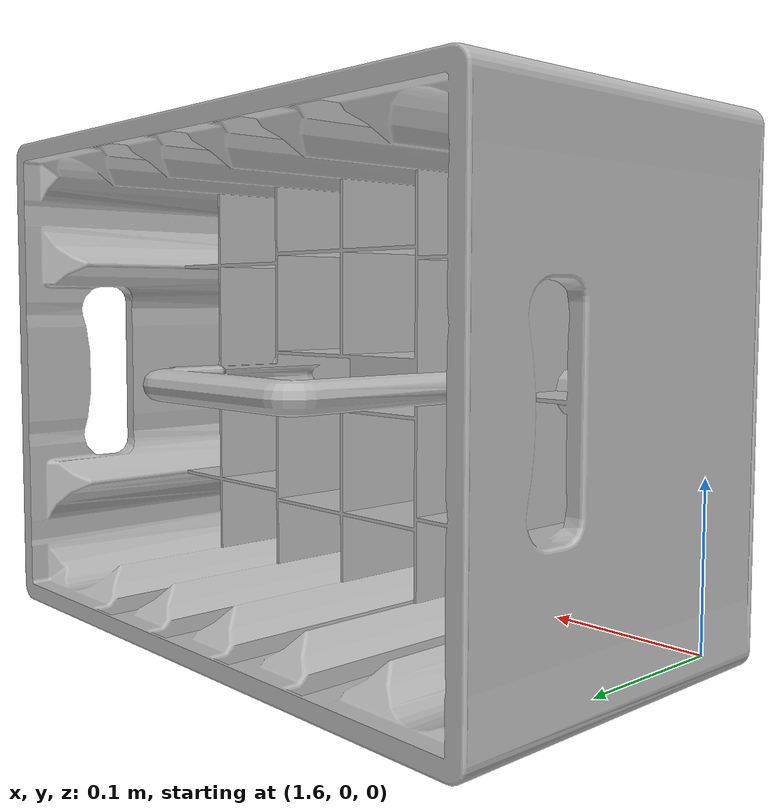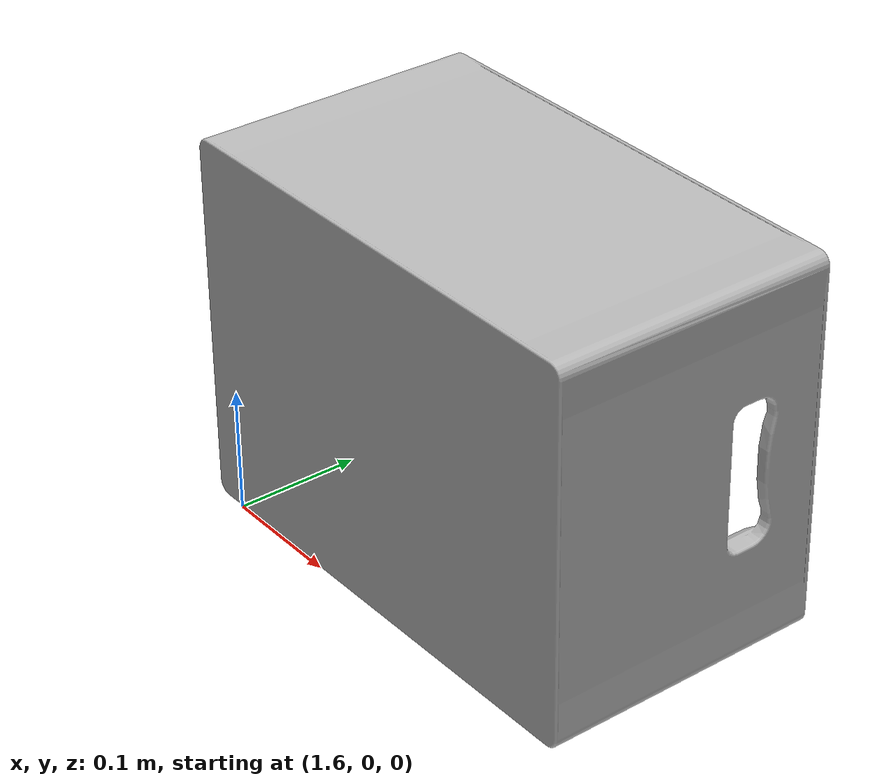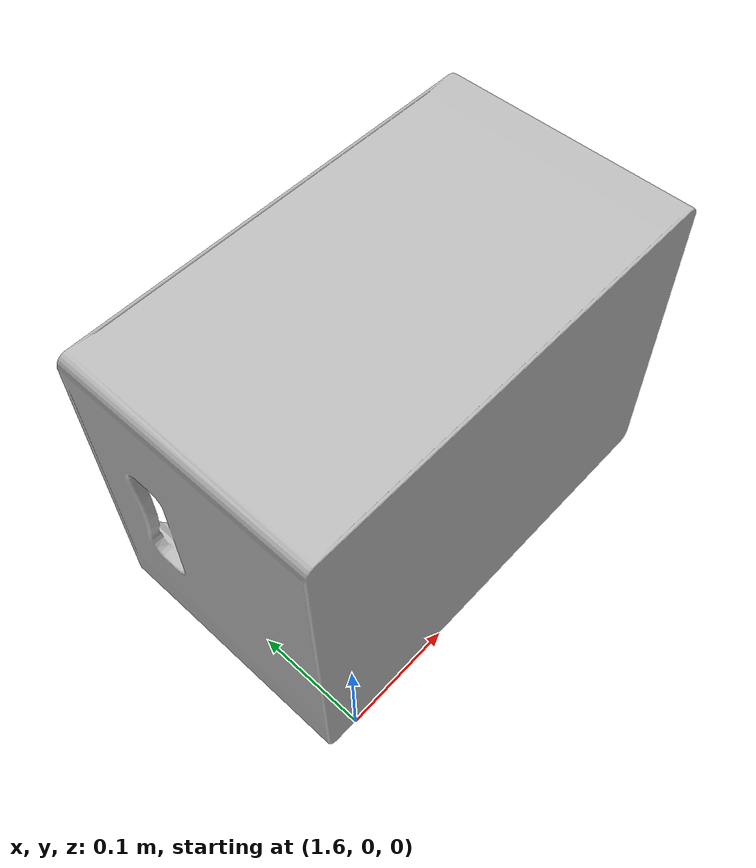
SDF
<sdf version='1.5'>
  <model name='beer_crate'>
    <link name='beer_crate'>
      <pose frame=''>0 0 0 0 -0 0</pose>
      <inertial>
        <pose frame=''>0 0 0 0 -0 0</pose>
        <mass>4.7831</mass>
        <inertia>
          <ixx>0.0808134</ixx>
          <ixy>1.95902e-06</ixy>
          <ixz>-1.05973e-07</ixz>
          <iyy>-2.15837e-07</iyy>
          <iyz>-0.117103</iyz>
          <izz>2.15837e-07</izz>
        </inertia>
      </inertial>
      <collision name='beer_crate_collision'>
        <pose frame=''>0 0 0 1.5708 -0 0</pose>
        <geometry>
          <mesh>
            <scale>1 1 1</scale>
            <uri>model://beer_crate/cad/beer_crate.STL</uri>
          </mesh>
        </geometry>
      </collision>
      <visual name='beer_crate_visual'>
        <pose frame=''>1.5708 0 0 0 -0 0</pose>
        <geometry>
          <mesh>
            <scale>1 1 1</scale>
            <uri>model://beer_crate/cad/beer_crate.STL</uri>
          </mesh>
        </geometry>
      </visual>
    </link>
  </model>
</sdf>
